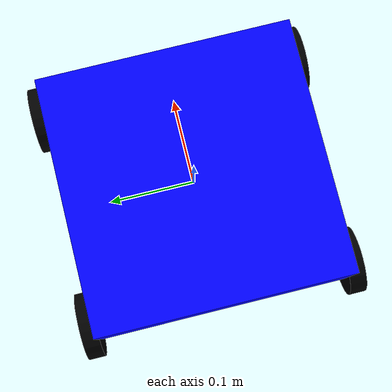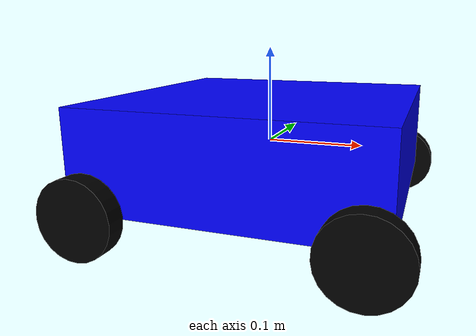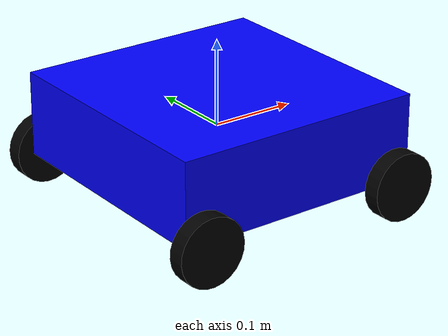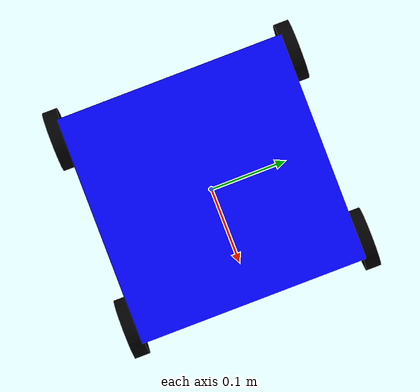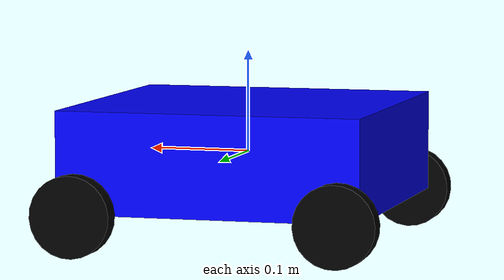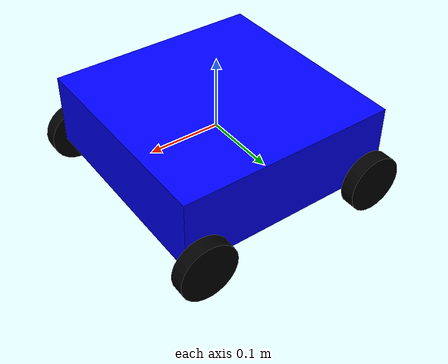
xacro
<?xml version="1.0"?>
<robot name="moving_cube" xmlns:xacro="http://www.ros.org/wiki/xacro">

  <!-- Root frame -->
  <link name="map" />

  <!-- Cube -->
  <link name="mecanum_base_link">
  <visual>
    <origin xyz="0 0 0" rpy="0 0 0" />
    <geometry>
      <box size="0.3 0.3 0.1" />
    </geometry>
    <material name="blue">
      <color rgba="0 0 1 1" />
    </material>
  </visual>
  <collision>
    <origin xyz="0 0 0.5" rpy="0 0 0" />
    <geometry>
      <box size="0.3 0.3 0.1" />
    </geometry>
  </collision>
  <inertial>
    <origin xyz="0 0 0" rpy="0 0 0" />
    <mass value="1.0" />
    <inertia ixx="0.1" ixy="0" ixz="0" iyy="0.1" iyz="0" izz="0.1" />
  </inertial>
  </link>

  <!-- Wheels -->
  <!-- Front-left wheel -->
  <link name="wheel_fl">
  <visual>
    <origin xyz="0 0 0" rpy="0 0 90" />
    <geometry>
      <cylinder radius="0.04" length="0.02" />
    </geometry>
    <material name="black">
      <color rgba="0 0 0 1" />
    </material>
  </visual>
  </link>

  <joint name="joint_wheel_fl" type="continuous">
    <parent link="mecanum_base_link" />
    <child link="wheel_fl" />
    <origin xyz="0.13 0.16 -0.05" rpy="1.570796327 0 0" />
    <axis xyz="0 0 1" />
  </joint>

  <!-- Front-right wheel -->
  <link name="wheel_fr">
  <visual>
    <origin xyz="0 0 0" rpy="0 0 90" />
    <geometry>
      <cylinder radius="0.04" length="0.02" />
    </geometry>
    <material name="black">
      <color rgba="0 0 0 1" />
    </material>
  </visual>
  </link>

  <joint name="joint_wheel_fr" type="continuous">
    <parent link="mecanum_base_link" />
    <child link="wheel_fr" />
    <origin xyz="0.13 -0.16 -0.05" rpy="-1.570796327 0 0" />
    <axis xyz="0 0 1" />
  </joint>

  <!-- Rear-left wheel -->
  <link name="wheel_rl">
  <visual>
    <origin xyz="0 0 0" rpy="0 0 90" />
    <geometry>
      <cylinder radius="0.04" length="0.02" />
    </geometry>
    <material name="black">
      <color rgba="0 0 0 1" />
    </material>
  </visual>
  </link>

  <joint name="joint_wheel_rl" type="continuous">
    <parent link="mecanum_base_link" />
    <child link="wheel_rl" />
    <origin xyz="-0.13 0.16 -0.05" rpy="1.570796327 0 0" />
    <axis xyz="0 0 1" />
  </joint>

  <!-- Rear-right wheel -->
  <link name="wheel_rr">
  <visual>
    <origin xyz="0 0 0" rpy="0 0 90" />
    <geometry>
      <cylinder radius="0.04" length="0.02" />
    </geometry>
    <material name="black">
      <color rgba="0 0 0 1" />
    </material>
  </visual>
  </link>

  <joint name="joint_wheel_rr" type="continuous">
    <parent link="mecanum_base_link" />
    <child link="wheel_rr" />
    <origin xyz="-0.13 -0.16 -0.05" rpy="-1.570796327 0 0" />
    <axis xyz="0 0 -1" />
  </joint>

  <!-- Fixed joint from map → cube -->
  <joint name="map_to_mecanum" type="fixed">
    <parent link="map" />
    <child link="mecanum_base_link" />
    <origin xyz="0 0 0" rpy="0 0 0" />
  </joint>

  <link name="imu_base_link">
  <visual>
    <origin xyz="0 0 0" rpy="0 0 0" />
    <geometry>
      <box size="0.3 0.3 0.1" />
    </geometry>
    <material name="green">
      <color rgba="0 1 0 1" />
    </material>
  </visual>
  <collision>
    <origin xyz="0 0 0.5" rpy="0 0 0" />
    <geometry>
      <box size="0.3 0.3 0.1" />
    </geometry>
  </collision>
  <inertial>
    <origin xyz="0 0 0" rpy="0 0 0" />
    <mass value="1.0" />
    <inertia ixx="0.1" ixy="0" ixz="0" iyy="0.1" iyz="0" izz="0.1" />
  </inertial>
  </link>

  <!-- Fixed joint from map → cube -->
  <joint name="map_to_imu" type="fixed">
    <parent link="map" />
    <child link="imu_base_link" />
    <origin xyz="0 0 0" rpy="0 0 0" />
  </joint>

</robot>
